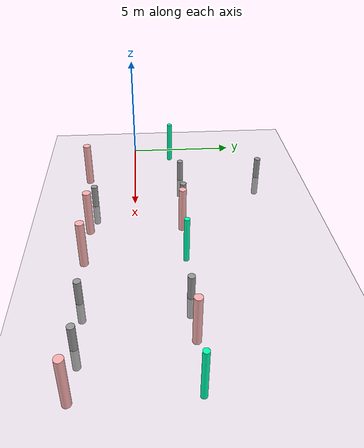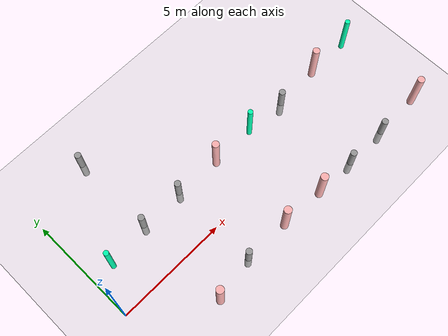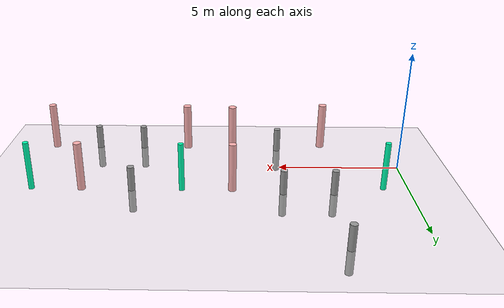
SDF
<sdf version="1.6">
 <world name="default">
  <model name="ground_plane">
   <static>1</static>
   <link name="link">
    <collision name="collision">
     <geometry><plane><normal>0 0 1</normal><size>100 100</size></plane></geometry>
     <surface><friction><ode><mu>100</mu><mu2>50</mu2></ode></friction></surface>
    </collision>
    <visual name="visual">
     <cast_shadows>0</cast_shadows>
     <geometry><plane><normal>0 0 1</normal><size>100 100</size></plane></geometry>
     <material>
      <script><uri>file://media/materials/scripts/gazebo.material</uri><name>Gazebo/Grey</name></script>
     </material>
    </visual>
   </link>
  </model>
  <model name="my_cylinder014_clone_58">
   <pose>5 -1.8 0 0 -0 0</pose>
   <link name="my_cylinder014::link">
    <inertial>
     <mass>1</mass>
     <inertia><ixx>0.145833</ixx><ixy>0</ixy><ixz>0</ixz><iyy>0.145833</iyy><iyz>0</iyz><izz>0.125</izz></inertia>
    </inertial>
    <visual name="visual">
     <geometry><cylinder><radius>0.14</radius><length>2</length></cylinder></geometry>
     <material>
      <script><name>Gazebo/Grey</name><uri>file://media/materials/scripts/gazebo.material</uri></script>
      <ambient>0.3 0.3 0.3 1</ambient>
      <diffuse>0.7 0.7 0.7 1</diffuse>
      <specular>1 0.01 0.01 1</specular>
      <emissive>0 0 0 1</emissive>
      <shader type="vertex"><normal_map>__default__</normal_map></shader>
     </material>
    </visual>
    <collision name="collision">
     <geometry><cylinder><radius>0.14</radius><length>2</length></cylinder></geometry>
     <surface>
      <friction>
       <ode><mu>1</mu><mu2>1</mu2><fdir1>0 0 0</fdir1><slip1>0</slip1><slip2>0</slip2></ode>
       <torsional>
        <coefficient>1</coefficient>
        <patch_radius>0</patch_radius>
        <surface_radius>0</surface_radius>
        <use_patch_radius>1</use_patch_radius>
        <ode><slip>0</slip></ode>
       </torsional>
      </friction>
      <bounce><restitution_coefficient>0</restitution_coefficient><threshold>1e+06</threshold></bounce>
      <contact>
       <collide_without_contact>0</collide_without_contact>
       <collide_without_contact_bitmask>1</collide_without_contact_bitmask>
       <collide_bitmask>1</collide_bitmask>
       <ode>
        <soft_cfm>0</soft_cfm>
        <soft_erp>0.2</soft_erp>
        <kp>1e+13</kp>
        <kd>1</kd>
        <max_vel>0.01</max_vel>
        <min_depth>0</min_depth>
       </ode>
       <bullet>
        <split_impulse>1</split_impulse>
        <split_impulse_penetration_threshold>-0.01</split_impulse_penetration_threshold>
        <soft_cfm>0</soft_cfm>
        <soft_erp>0.2</soft_erp>
        <kp>1e+13</kp>
        <kd>1</kd>
       </bullet>
      </contact>
     </surface>
    </collision>
   </link>
   <static>1</static>
  </model>
  <model name="my_cylinder014_clone_61">
   <pose>11 -2 0 0 -0 0</pose>
   <link name="my_cylinder014::link">
    <inertial>
     <mass>1</mass>
     <inertia><ixx>0.145833</ixx><ixy>0</ixy><ixz>0</ixz><iyy>0.145833</iyy><iyz>0</iyz><izz>0.125</izz></inertia>
    </inertial>
    <visual name="visual">
     <geometry><cylinder><radius>0.14</radius><length>2</length></cylinder></geometry>
     <material>
      <script><name>Gazebo/Grey</name><uri>file://media/materials/scripts/gazebo.material</uri></script>
      <ambient>0.3 0.3 0.3 1</ambient>
      <diffuse>0.7 0.7 0.7 1</diffuse>
      <specular>1 0.01 0.01 1</specular>
      <emissive>0 0 0 1</emissive>
      <shader type="vertex"><normal_map>__default__</normal_map></shader>
     </material>
    </visual>
    <collision name="collision">
     <geometry><cylinder><radius>0.14</radius><length>2</length></cylinder></geometry>
     <surface>
      <friction>
       <ode><mu>1</mu><mu2>1</mu2><fdir1>0 0 0</fdir1><slip1>0</slip1><slip2>0</slip2></ode>
       <torsional>
        <coefficient>1</coefficient>
        <patch_radius>0</patch_radius>
        <surface_radius>0</surface_radius>
        <use_patch_radius>1</use_patch_radius>
        <ode><slip>0</slip></ode>
       </torsional>
      </friction>
      <bounce><restitution_coefficient>0</restitution_coefficient><threshold>1e+06</threshold></bounce>
      <contact>
       <collide_without_contact>0</collide_without_contact>
       <collide_without_contact_bitmask>1</collide_without_contact_bitmask>
       <collide_bitmask>1</collide_bitmask>
       <ode>
        <soft_cfm>0</soft_cfm>
        <soft_erp>0.2</soft_erp>
        <kp>1e+13</kp>
        <kd>1</kd>
        <max_vel>0.01</max_vel>
        <min_depth>0</min_depth>
       </ode>
       <bullet>
        <split_impulse>1</split_impulse>
        <split_impulse_penetration_threshold>-0.01</split_impulse_penetration_threshold>
        <soft_cfm>0</soft_cfm>
        <soft_erp>0.2</soft_erp>
        <kp>1e+13</kp>
        <kd>1</kd>
       </bullet>
      </contact>
     </surface>
    </collision>
   </link>
   <static>1</static>
  </model>
  <model name="my_cylinder014_clone_62">
   <pose>13 -2 0 0 -0 0</pose>
   <link name="my_cylinder014::link">
    <inertial>
     <mass>1</mass>
     <inertia><ixx>0.145833</ixx><ixy>0</ixy><ixz>0</ixz><iyy>0.145833</iyy><iyz>0</iyz><izz>0.125</izz></inertia>
    </inertial>
    <visual name="visual">
     <geometry><cylinder><radius>0.14</radius><length>2</length></cylinder></geometry>
     <material>
      <script><name>Gazebo/Grey</name><uri>file://media/materials/scripts/gazebo.material</uri></script>
      <ambient>0.3 0.3 0.3 1</ambient>
      <diffuse>0.7 0.7 0.7 1</diffuse>
      <specular>1 0.01 0.01 1</specular>
      <emissive>0 0 0 1</emissive>
      <shader type="vertex"><normal_map>__default__</normal_map></shader>
     </material>
    </visual>
    <collision name="collision">
     <geometry><cylinder><radius>0.14</radius><length>2</length></cylinder></geometry>
     <surface>
      <friction>
       <ode><mu>1</mu><mu2>1</mu2><fdir1>0 0 0</fdir1><slip1>0</slip1><slip2>0</slip2></ode>
       <torsional>
        <coefficient>1</coefficient>
        <patch_radius>0</patch_radius>
        <surface_radius>0</surface_radius>
        <use_patch_radius>1</use_patch_radius>
        <ode><slip>0</slip></ode>
       </torsional>
      </friction>
      <bounce><restitution_coefficient>0</restitution_coefficient><threshold>1e+06</threshold></bounce>
      <contact>
       <collide_without_contact>0</collide_without_contact>
       <collide_without_contact_bitmask>1</collide_without_contact_bitmask>
       <collide_bitmask>1</collide_bitmask>
       <ode>
        <soft_cfm>0</soft_cfm>
        <soft_erp>0.2</soft_erp>
        <kp>1e+13</kp>
        <kd>1</kd>
        <max_vel>0.01</max_vel>
        <min_depth>0</min_depth>
       </ode>
       <bullet>
        <split_impulse>1</split_impulse>
        <split_impulse_penetration_threshold>-0.01</split_impulse_penetration_threshold>
        <soft_cfm>0</soft_cfm>
        <soft_erp>0.2</soft_erp>
        <kp>1e+13</kp>
        <kd>1</kd>
       </bullet>
      </contact>
     </surface>
    </collision>
   </link>
   <static>1</static>
  </model>
  <model name="my_cylinder014_clone_73">
   <pose>3 2.2 0 0 -0 0</pose>
   <link name="my_cylinder014::link">
    <inertial>
     <mass>1</mass>
     <inertia><ixx>0.145833</ixx><ixy>0</ixy><ixz>0</ixz><iyy>0.145833</iyy><iyz>0</iyz><izz>0.125</izz></inertia>
    </inertial>
    <visual name="visual">
     <geometry><cylinder><radius>0.14</radius><length>2</length></cylinder></geometry>
     <material>
      <script><name>Gazebo/Grey</name><uri>file://media/materials/scripts/gazebo.material</uri></script>
      <ambient>0.3 0.3 0.3 1</ambient>
      <diffuse>0.7 0.7 0.7 1</diffuse>
      <specular>1 0.01 0.01 1</specular>
      <emissive>0 0 0 1</emissive>
      <shader type="vertex"><normal_map>__default__</normal_map></shader>
     </material>
    </visual>
    <collision name="collision">
     <geometry><cylinder><radius>0.14</radius><length>2</length></cylinder></geometry>
     <surface>
      <friction>
       <ode><mu>1</mu><mu2>1</mu2><fdir1>0 0 0</fdir1><slip1>0</slip1><slip2>0</slip2></ode>
       <torsional>
        <coefficient>1</coefficient>
        <patch_radius>0</patch_radius>
        <surface_radius>0</surface_radius>
        <use_patch_radius>1</use_patch_radius>
        <ode><slip>0</slip></ode>
       </torsional>
      </friction>
      <bounce><restitution_coefficient>0</restitution_coefficient><threshold>1e+06</threshold></bounce>
      <contact>
       <collide_without_contact>0</collide_without_contact>
       <collide_without_contact_bitmask>1</collide_without_contact_bitmask>
       <collide_bitmask>1</collide_bitmask>
       <ode>
        <soft_cfm>0</soft_cfm>
        <soft_erp>0.2</soft_erp>
        <kp>1e+13</kp>
        <kd>1</kd>
        <max_vel>0.01</max_vel>
        <min_depth>0</min_depth>
       </ode>
       <bullet>
        <split_impulse>1</split_impulse>
        <split_impulse_penetration_threshold>-0.01</split_impulse_penetration_threshold>
        <soft_cfm>0</soft_cfm>
        <soft_erp>0.2</soft_erp>
        <kp>1e+13</kp>
        <kd>1</kd>
       </bullet>
      </contact>
     </surface>
    </collision>
   </link>
   <static>1</static>
  </model>
  <model name="my_cylinder014_clone_74">
   <pose>5 2.2 0 0 -0 0</pose>
   <link name="my_cylinder014::link">
    <inertial>
     <mass>1</mass>
     <inertia><ixx>0.145833</ixx><ixy>0</ixy><ixz>0</ixz><iyy>0.145833</iyy><iyz>0</iyz><izz>0.125</izz></inertia>
    </inertial>
    <visual name="visual">
     <geometry><cylinder><radius>0.14</radius><length>2</length></cylinder></geometry>
     <material>
      <script><name>Gazebo/Grey</name><uri>file://media/materials/scripts/gazebo.material</uri></script>
      <ambient>0.3 0.3 0.3 1</ambient>
      <diffuse>0.7 0.7 0.7 1</diffuse>
      <specular>1 0.01 0.01 1</specular>
      <emissive>0 0 0 1</emissive>
      <shader type="vertex"><normal_map>__default__</normal_map></shader>
     </material>
    </visual>
    <collision name="collision">
     <geometry><cylinder><radius>0.14</radius><length>2</length></cylinder></geometry>
     <surface>
      <friction>
       <ode><mu>1</mu><mu2>1</mu2><fdir1>0 0 0</fdir1><slip1>0</slip1><slip2>0</slip2></ode>
       <torsional>
        <coefficient>1</coefficient>
        <patch_radius>0</patch_radius>
        <surface_radius>0</surface_radius>
        <use_patch_radius>1</use_patch_radius>
        <ode><slip>0</slip></ode>
       </torsional>
      </friction>
      <bounce><restitution_coefficient>0</restitution_coefficient><threshold>1e+06</threshold></bounce>
      <contact>
       <collide_without_contact>0</collide_without_contact>
       <collide_without_contact_bitmask>1</collide_without_contact_bitmask>
       <collide_bitmask>1</collide_bitmask>
       <ode>
        <soft_cfm>0</soft_cfm>
        <soft_erp>0.2</soft_erp>
        <kp>1e+13</kp>
        <kd>1</kd>
        <max_vel>0.01</max_vel>
        <min_depth>0</min_depth>
       </ode>
       <bullet>
        <split_impulse>1</split_impulse>
        <split_impulse_penetration_threshold>-0.01</split_impulse_penetration_threshold>
        <soft_cfm>0</soft_cfm>
        <soft_erp>0.2</soft_erp>
        <kp>1e+13</kp>
        <kd>1</kd>
       </bullet>
      </contact>
     </surface>
    </collision>
   </link>
   <static>1</static>
  </model>
  <model name="my_cylinder014_clone_77">
   <pose>11 2 0 0 -0 0</pose>
   <link name="my_cylinder014::link">
    <inertial>
     <mass>1</mass>
     <inertia><ixx>0.145833</ixx><ixy>0</ixy><ixz>0</ixz><iyy>0.145833</iyy><iyz>0</iyz><izz>0.125</izz></inertia>
    </inertial>
    <visual name="visual">
     <geometry><cylinder><radius>0.14</radius><length>2</length></cylinder></geometry>
     <material>
      <script><name>Gazebo/Grey</name><uri>file://media/materials/scripts/gazebo.material</uri></script>
      <ambient>0.3 0.3 0.3 1</ambient>
      <diffuse>0.7 0.7 0.7 1</diffuse>
      <specular>1 0.01 0.01 1</specular>
      <emissive>0 0 0 1</emissive>
      <shader type="vertex"><normal_map>__default__</normal_map></shader>
     </material>
    </visual>
    <collision name="collision">
     <geometry><cylinder><radius>0.14</radius><length>2</length></cylinder></geometry>
     <surface>
      <friction>
       <ode><mu>1</mu><mu2>1</mu2><fdir1>0 0 0</fdir1><slip1>0</slip1><slip2>0</slip2></ode>
       <torsional>
        <coefficient>1</coefficient>
        <patch_radius>0</patch_radius>
        <surface_radius>0</surface_radius>
        <use_patch_radius>1</use_patch_radius>
        <ode><slip>0</slip></ode>
       </torsional>
      </friction>
      <bounce><restitution_coefficient>0</restitution_coefficient><threshold>1e+06</threshold></bounce>
      <contact>
       <collide_without_contact>0</collide_without_contact>
       <collide_without_contact_bitmask>1</collide_without_contact_bitmask>
       <collide_bitmask>1</collide_bitmask>
       <ode>
        <soft_cfm>0</soft_cfm>
        <soft_erp>0.2</soft_erp>
        <kp>1e+13</kp>
        <kd>1</kd>
        <max_vel>0.01</max_vel>
        <min_depth>0</min_depth>
       </ode>
       <bullet>
        <split_impulse>1</split_impulse>
        <split_impulse_penetration_threshold>-0.01</split_impulse_penetration_threshold>
        <soft_cfm>0</soft_cfm>
        <soft_erp>0.2</soft_erp>
        <kp>1e+13</kp>
        <kd>1</kd>
       </bullet>
      </contact>
     </surface>
    </collision>
   </link>
   <static>1</static>
  </model>
  <model name="my_cylinder014_clone_89">
   <pose>3 6 0 0 -0 0</pose>
   <link name="my_cylinder014::link">
    <inertial>
     <mass>1</mass>
     <inertia><ixx>0.145833</ixx><ixy>0</ixy><ixz>0</ixz><iyy>0.145833</iyy><iyz>0</iyz><izz>0.125</izz></inertia>
    </inertial>
    <visual name="visual">
     <geometry><cylinder><radius>0.14</radius><length>2</length></cylinder></geometry>
     <material>
      <script><name>Gazebo/Grey</name><uri>file://media/materials/scripts/gazebo.material</uri></script>
      <ambient>0.3 0.3 0.3 1</ambient>
      <diffuse>0.7 0.7 0.7 1</diffuse>
      <specular>1 0.01 0.01 1</specular>
      <emissive>0 0 0 1</emissive>
      <shader type="vertex"><normal_map>__default__</normal_map></shader>
     </material>
    </visual>
    <collision name="collision">
     <geometry><cylinder><radius>0.14</radius><length>2</length></cylinder></geometry>
     <surface>
      <friction>
       <ode><mu>1</mu><mu2>1</mu2><fdir1>0 0 0</fdir1><slip1>0</slip1><slip2>0</slip2></ode>
       <torsional>
        <coefficient>1</coefficient>
        <patch_radius>0</patch_radius>
        <surface_radius>0</surface_radius>
        <use_patch_radius>1</use_patch_radius>
        <ode><slip>0</slip></ode>
       </torsional>
      </friction>
      <bounce><restitution_coefficient>0</restitution_coefficient><threshold>1e+06</threshold></bounce>
      <contact>
       <collide_without_contact>0</collide_without_contact>
       <collide_without_contact_bitmask>1</collide_without_contact_bitmask>
       <collide_bitmask>1</collide_bitmask>
       <ode>
        <soft_cfm>0</soft_cfm>
        <soft_erp>0.2</soft_erp>
        <kp>1e+13</kp>
        <kd>1</kd>
        <max_vel>0.01</max_vel>
        <min_depth>0</min_depth>
       </ode>
       <bullet>
        <split_impulse>1</split_impulse>
        <split_impulse_penetration_threshold>-0.01</split_impulse_penetration_threshold>
        <soft_cfm>0</soft_cfm>
        <soft_erp>0.2</soft_erp>
        <kp>1e+13</kp>
        <kd>1</kd>
       </bullet>
      </contact>
     </surface>
    </collision>
   </link>
   <static>1</static>
  </model>
  <model name="my_cylinder0168">
   <link name="link">
    <inertial>
     <mass>1</mass>
     <inertia><ixx>0.145833</ixx><ixy>0</ixy><ixz>0</ixz><iyy>0.145833</iyy><iyz>0</iyz><izz>0.125</izz></inertia>
    </inertial>
    <visual name="visual">
     <geometry><cylinder><radius>0.168</radius><length>2</length></cylinder></geometry>
     <material>
      <script><name>Gazebo/Grey</name><uri>file://media/materials/scripts/gazebo.material</uri></script>
      <ambient>1 0.3 0.3 1</ambient>
      <diffuse>1 0.7 0.7 1</diffuse>
      <specular>1 0.01 0.01 1</specular>
      <emissive>1 0 0 1</emissive>
      <shader type="vertex"><normal_map>__default__</normal_map></shader>
     </material>
    </visual>
    <collision name="collision">
     <geometry><cylinder><radius>0.168</radius><length>2</length></cylinder></geometry>
     <surface>
      <friction>
       <ode><mu>1</mu><mu2>1</mu2><fdir1>0 0 0</fdir1><slip1>0</slip1><slip2>0</slip2></ode>
       <torsional>
        <coefficient>1</coefficient>
        <patch_radius>0</patch_radius>
        <surface_radius>0</surface_radius>
        <use_patch_radius>1</use_patch_radius>
        <ode><slip>0</slip></ode>
       </torsional>
      </friction>
      <bounce><restitution_coefficient>0</restitution_coefficient><threshold>1e+06</threshold></bounce>
      <contact>
       <collide_without_contact>0</collide_without_contact>
       <collide_without_contact_bitmask>1</collide_without_contact_bitmask>
       <collide_bitmask>1</collide_bitmask>
       <ode>
        <soft_cfm>0</soft_cfm>
        <soft_erp>0.2</soft_erp>
        <kp>1e+13</kp>
        <kd>1</kd>
        <max_vel>0.01</max_vel>
        <min_depth>0</min_depth>
       </ode>
       <bullet>
        <split_impulse>1</split_impulse>
        <split_impulse_penetration_threshold>-0.01</split_impulse_penetration_threshold>
        <soft_cfm>0</soft_cfm>
        <soft_erp>0.2</soft_erp>
        <kp>1e+13</kp>
        <kd>1</kd>
       </bullet>
      </contact>
     </surface>
    </collision>
   </link>
   <static>0</static>
   <pose>3 -2.2 0.999995 0 -0 0.000271</pose>
  </model>
  <model name="my_cylinder0168_0">
   <link name="link">
    <inertial>
     <mass>1</mass>
     <inertia><ixx>0.145833</ixx><ixy>0</ixy><ixz>0</ixz><iyy>0.145833</iyy><iyz>0</iyz><izz>0.125</izz></inertia>
    </inertial>
    <visual name="visual">
     <geometry><cylinder><radius>0.168</radius><length>2</length></cylinder></geometry>
     <material>
      <script><name>Gazebo/Grey</name><uri>file://media/materials/scripts/gazebo.material</uri></script>
      <ambient>1 0.3 0.3 1</ambient>
      <diffuse>1 0.7 0.7 1</diffuse>
      <specular>1 0.01 0.01 1</specular>
      <emissive>1 0 0 1</emissive>
      <shader type="vertex"><normal_map>__default__</normal_map></shader>
     </material>
    </visual>
    <collision name="collision">
     <geometry><cylinder><radius>0.168</radius><length>2</length></cylinder></geometry>
     <surface>
      <friction>
       <ode><mu>1</mu><mu2>1</mu2><fdir1>0 0 0</fdir1><slip1>0</slip1><slip2>0</slip2></ode>
       <torsional>
        <coefficient>1</coefficient>
        <patch_radius>0</patch_radius>
        <surface_radius>0</surface_radius>
        <use_patch_radius>1</use_patch_radius>
        <ode><slip>0</slip></ode>
       </torsional>
      </friction>
      <bounce><restitution_coefficient>0</restitution_coefficient><threshold>1e+06</threshold></bounce>
      <contact>
       <collide_without_contact>0</collide_without_contact>
       <collide_without_contact_bitmask>1</collide_without_contact_bitmask>
       <collide_bitmask>1</collide_bitmask>
       <ode>
        <soft_cfm>0</soft_cfm>
        <soft_erp>0.2</soft_erp>
        <kp>1e+13</kp>
        <kd>1</kd>
        <max_vel>0.01</max_vel>
        <min_depth>0</min_depth>
       </ode>
       <bullet>
        <split_impulse>1</split_impulse>
        <split_impulse_penetration_threshold>-0.01</split_impulse_penetration_threshold>
        <soft_cfm>0</soft_cfm>
        <soft_erp>0.2</soft_erp>
        <kp>1e+13</kp>
        <kd>1</kd>
       </bullet>
      </contact>
     </surface>
    </collision>
   </link>
   <static>0</static>
   <pose>7 -1.9 0.999995 0 -0 0.000274</pose>
  </model>
  <model name="my_cylinder0168_1">
   <link name="link">
    <inertial>
     <mass>1</mass>
     <inertia><ixx>0.145833</ixx><ixy>0</ixy><ixz>0</ixz><iyy>0.145833</iyy><iyz>0</iyz><izz>0.125</izz></inertia>
    </inertial>
    <visual name="visual">
     <geometry><cylinder><radius>0.168</radius><length>2</length></cylinder></geometry>
     <material>
      <script><name>Gazebo/Grey</name><uri>file://media/materials/scripts/gazebo.material</uri></script>
      <ambient>1 0.3 0.3 1</ambient>
      <diffuse>1 0.7 0.7 1</diffuse>
      <specular>1 0.01 0.01 1</specular>
      <emissive>1 0 0 1</emissive>
      <shader type="vertex"><normal_map>__default__</normal_map></shader>
     </material>
    </visual>
    <collision name="collision">
     <geometry><cylinder><radius>0.168</radius><length>2</length></cylinder></geometry>
     <surface>
      <friction>
       <ode><mu>1</mu><mu2>1</mu2><fdir1>0 0 0</fdir1><slip1>0</slip1><slip2>0</slip2></ode>
       <torsional>
        <coefficient>1</coefficient>
        <patch_radius>0</patch_radius>
        <surface_radius>0</surface_radius>
        <use_patch_radius>1</use_patch_radius>
        <ode><slip>0</slip></ode>
       </torsional>
      </friction>
      <bounce><restitution_coefficient>0</restitution_coefficient><threshold>1e+06</threshold></bounce>
      <contact>
       <collide_without_contact>0</collide_without_contact>
       <collide_without_contact_bitmask>1</collide_without_contact_bitmask>
       <collide_bitmask>1</collide_bitmask>
       <ode>
        <soft_cfm>0</soft_cfm>
        <soft_erp>0.2</soft_erp>
        <kp>1e+13</kp>
        <kd>1</kd>
        <max_vel>0.01</max_vel>
        <min_depth>0</min_depth>
       </ode>
       <bullet>
        <split_impulse>1</split_impulse>
        <split_impulse_penetration_threshold>-0.01</split_impulse_penetration_threshold>
        <soft_cfm>0</soft_cfm>
        <soft_erp>0.2</soft_erp>
        <kp>1e+13</kp>
        <kd>1</kd>
       </bullet>
      </contact>
     </surface>
    </collision>
   </link>
   <static>0</static>
   <pose>9.00001 -1.99999 0.999995 0 -0 0.000305</pose>
  </model>
  <model name="my_cylinder0112_0">
   <link name="link">
    <inertial>
     <mass>1</mass>
     <inertia><ixx>0.145833</ixx><ixy>0</ixy><ixz>0</ixz><iyy>0.145833</iyy><iyz>0</iyz><izz>0.125</izz></inertia>
    </inertial>
    <visual name="visual">
     <geometry><cylinder><radius>0.112</radius><length>2</length></cylinder></geometry>
     <material>
      <script><name>Gazebo/Grey</name><uri>file://media/materials/scripts/gazebo.material</uri></script>
      <ambient>0 1 0.3 1</ambient>
      <diffuse>0 1 0.7 1</diffuse>
      <specular>1 1 0.01 1</specular>
      <emissive>0 0 0 1</emissive>
      <shader type="vertex"><normal_map>__default__</normal_map></shader>
     </material>
    </visual>
    <collision name="collision">
     <geometry><cylinder><radius>0.112</radius><length>2</length></cylinder></geometry>
     <surface>
      <friction>
       <ode><mu>1</mu><mu2>1</mu2><fdir1>0 0 0</fdir1><slip1>0</slip1><slip2>0</slip2></ode>
       <torsional>
        <coefficient>1</coefficient>
        <patch_radius>0</patch_radius>
        <surface_radius>0</surface_radius>
        <use_patch_radius>1</use_patch_radius>
        <ode><slip>0</slip></ode>
       </torsional>
      </friction>
      <bounce><restitution_coefficient>0</restitution_coefficient><threshold>1e+06</threshold></bounce>
      <contact>
       <collide_without_contact>0</collide_without_contact>
       <collide_without_contact_bitmask>1</collide_without_contact_bitmask>
       <collide_bitmask>1</collide_bitmask>
       <ode>
        <soft_cfm>0</soft_cfm>
        <soft_erp>0.2</soft_erp>
        <kp>1e+13</kp>
        <kd>1</kd>
        <max_vel>0.01</max_vel>
        <min_depth>0</min_depth>
       </ode>
       <bullet>
        <split_impulse>1</split_impulse>
        <split_impulse_penetration_threshold>-0.01</split_impulse_penetration_threshold>
        <soft_cfm>0</soft_cfm>
        <soft_erp>0.2</soft_erp>
        <kp>1e+13</kp>
        <kd>1</kd>
       </bullet>
      </contact>
     </surface>
    </collision>
   </link>
   <static>0</static>
   <pose>1.00009 1.80002 0.999993 0 0 -0.002872</pose>
  </model>
  <model name="my_cylinder0154">
   <link name="link">
    <inertial>
     <mass>1</mass>
     <inertia><ixx>0.145833</ixx><ixy>0</ixy><ixz>0</ixz><iyy>0.145833</iyy><iyz>0</iyz><izz>0.125</izz></inertia>
    </inertial>
    <visual name="visual">
     <geometry><cylinder><radius>0.154</radius><length>2</length></cylinder></geometry>
     <material>
      <script><name>Gazebo/Grey</name><uri>file://media/materials/scripts/gazebo.material</uri></script>
      <ambient>0.8 0.3 0.3 1</ambient>
      <diffuse>1 0.7 0.7 1</diffuse>
      <specular>1 0.01 0.01 1</specular>
      <emissive>0 0 0 1</emissive>
      <shader type="vertex"><normal_map>__default__</normal_map></shader>
     </material>
    </visual>
    <collision name="collision">
     <geometry><cylinder><radius>0.154</radius><length>2</length></cylinder></geometry>
     <surface>
      <friction>
       <ode><mu>1</mu><mu2>1</mu2><fdir1>0 0 0</fdir1><slip1>0</slip1><slip2>0</slip2></ode>
       <torsional>
        <coefficient>1</coefficient>
        <patch_radius>0</patch_radius>
        <surface_radius>0</surface_radius>
        <use_patch_radius>1</use_patch_radius>
        <ode><slip>0</slip></ode>
       </torsional>
      </friction>
      <bounce><restitution_coefficient>0</restitution_coefficient><threshold>1e+06</threshold></bounce>
      <contact>
       <collide_without_contact>0</collide_without_contact>
       <collide_without_contact_bitmask>1</collide_without_contact_bitmask>
       <collide_bitmask>1</collide_bitmask>
       <ode>
        <soft_cfm>0</soft_cfm>
        <soft_erp>0.2</soft_erp>
        <kp>1e+13</kp>
        <kd>1</kd>
        <max_vel>0.01</max_vel>
        <min_depth>0</min_depth>
       </ode>
       <bullet>
        <split_impulse>1</split_impulse>
        <split_impulse_penetration_threshold>-0.01</split_impulse_penetration_threshold>
        <soft_cfm>0</soft_cfm>
        <soft_erp>0.2</soft_erp>
        <kp>1e+13</kp>
        <kd>1</kd>
       </bullet>
      </contact>
     </surface>
    </collision>
   </link>
   <static>0</static>
   <pose>7 2 0.999995 0 0 -9e-05</pose>
  </model>
  <model name="my_cylinder0112_1">
   <link name="link">
    <inertial>
     <mass>1</mass>
     <inertia><ixx>0.145833</ixx><ixy>0</ixy><ixz>0</ixz><iyy>0.145833</iyy><iyz>0</iyz><izz>0.125</izz></inertia>
    </inertial>
    <visual name="visual">
     <geometry><cylinder><radius>0.112</radius><length>2</length></cylinder></geometry>
     <material>
      <script><name>Gazebo/Grey</name><uri>file://media/materials/scripts/gazebo.material</uri></script>
      <ambient>0 1 0.3 1</ambient>
      <diffuse>0 1 0.7 1</diffuse>
      <specular>1 1 0.01 1</specular>
      <emissive>0 0 0 1</emissive>
      <shader type="vertex"><normal_map>__default__</normal_map></shader>
     </material>
    </visual>
    <collision name="collision">
     <geometry><cylinder><radius>0.112</radius><length>2</length></cylinder></geometry>
     <surface>
      <friction>
       <ode><mu>1</mu><mu2>1</mu2><fdir1>0 0 0</fdir1><slip1>0</slip1><slip2>0</slip2></ode>
       <torsional>
        <coefficient>1</coefficient>
        <patch_radius>0</patch_radius>
        <surface_radius>0</surface_radius>
        <use_patch_radius>1</use_patch_radius>
        <ode><slip>0</slip></ode>
       </torsional>
      </friction>
      <bounce><restitution_coefficient>0</restitution_coefficient><threshold>1e+06</threshold></bounce>
      <contact>
       <collide_without_contact>0</collide_without_contact>
       <collide_without_contact_bitmask>1</collide_without_contact_bitmask>
       <collide_bitmask>1</collide_bitmask>
       <ode>
        <soft_cfm>0</soft_cfm>
        <soft_erp>0.2</soft_erp>
        <kp>1e+13</kp>
        <kd>1</kd>
        <max_vel>0.01</max_vel>
        <min_depth>0</min_depth>
       </ode>
       <bullet>
        <split_impulse>1</split_impulse>
        <split_impulse_penetration_threshold>-0.01</split_impulse_penetration_threshold>
        <soft_cfm>0</soft_cfm>
        <soft_erp>0.2</soft_erp>
        <kp>1e+13</kp>
        <kd>1</kd>
       </bullet>
      </contact>
     </surface>
    </collision>
   </link>
   <static>0</static>
   <pose>9.00009 2.00009 0.999993 0 0 -0.002699</pose>
  </model>
  <model name="my_cylinder0112_2">
   <link name="link">
    <inertial>
     <mass>1</mass>
     <inertia><ixx>0.145833</ixx><ixy>0</ixy><ixz>0</ixz><iyy>0.145833</iyy><iyz>0</iyz><izz>0.125</izz></inertia>
    </inertial>
    <visual name="visual">
     <geometry><cylinder><radius>0.112</radius><length>2</length></cylinder></geometry>
     <material>
      <script><name>Gazebo/Grey</name><uri>file://media/materials/scripts/gazebo.material</uri></script>
      <ambient>0 1 0.3 1</ambient>
      <diffuse>0 1 0.7 1</diffuse>
      <specular>1 1 0.01 1</specular>
      <emissive>0 0 0 1</emissive>
      <shader type="vertex"><normal_map>__default__</normal_map></shader>
     </material>
    </visual>
    <collision name="collision">
     <geometry><cylinder><radius>0.112</radius><length>2</length></cylinder></geometry>
     <surface>
      <friction>
       <ode><mu>1</mu><mu2>1</mu2><fdir1>0 0 0</fdir1><slip1>0</slip1><slip2>0</slip2></ode>
       <torsional>
        <coefficient>1</coefficient>
        <patch_radius>0</patch_radius>
        <surface_radius>0</surface_radius>
        <use_patch_radius>1</use_patch_radius>
        <ode><slip>0</slip></ode>
       </torsional>
      </friction>
      <bounce><restitution_coefficient>0</restitution_coefficient><threshold>1e+06</threshold></bounce>
      <contact>
       <collide_without_contact>0</collide_without_contact>
       <collide_without_contact_bitmask>1</collide_without_contact_bitmask>
       <collide_bitmask>1</collide_bitmask>
       <ode>
        <soft_cfm>0</soft_cfm>
        <soft_erp>0.2</soft_erp>
        <kp>1e+13</kp>
        <kd>1</kd>
        <max_vel>0.01</max_vel>
        <min_depth>0</min_depth>
       </ode>
       <bullet>
        <split_impulse>1</split_impulse>
        <split_impulse_penetration_threshold>-0.01</split_impulse_penetration_threshold>
        <soft_cfm>0</soft_cfm>
        <soft_erp>0.2</soft_erp>
        <kp>1e+13</kp>
        <kd>1</kd>
       </bullet>
      </contact>
     </surface>
    </collision>
   </link>
   <static>0</static>
   <pose>15 2.00003 0.999997 0 0 -0.002463</pose>
  </model>
  <model name="my_cylinder0154_0">
   <link name="link">
    <inertial>
     <mass>1</mass>
     <inertia><ixx>0.145833</ixx><ixy>0</ixy><ixz>0</ixz><iyy>0.145833</iyy><iyz>0</iyz><izz>0.125</izz></inertia>
    </inertial>
    <visual name="visual">
     <geometry><cylinder><radius>0.154</radius><length>2</length></cylinder></geometry>
     <material>
      <script><name>Gazebo/Grey</name><uri>file://media/materials/scripts/gazebo.material</uri></script>
      <ambient>0.8 0.3 0.3 1</ambient>
      <diffuse>1 0.7 0.7 1</diffuse>
      <specular>1 0.01 0.01 1</specular>
      <emissive>0 0 0 1</emissive>
      <shader type="vertex"><normal_map>__default__</normal_map></shader>
     </material>
    </visual>
    <collision name="collision">
     <geometry><cylinder><radius>0.154</radius><length>2</length></cylinder></geometry>
     <surface>
      <friction>
       <ode><mu>1</mu><mu2>1</mu2><fdir1>0 0 0</fdir1><slip1>0</slip1><slip2>0</slip2></ode>
       <torsional>
        <coefficient>1</coefficient>
        <patch_radius>0</patch_radius>
        <surface_radius>0</surface_radius>
        <use_patch_radius>1</use_patch_radius>
        <ode><slip>0</slip></ode>
       </torsional>
      </friction>
      <bounce><restitution_coefficient>0</restitution_coefficient><threshold>1e+06</threshold></bounce>
      <contact>
       <collide_without_contact>0</collide_without_contact>
       <collide_without_contact_bitmask>1</collide_without_contact_bitmask>
       <collide_bitmask>1</collide_bitmask>
       <ode>
        <soft_cfm>0</soft_cfm>
        <soft_erp>0.2</soft_erp>
        <kp>1e+13</kp>
        <kd>1</kd>
        <max_vel>0.01</max_vel>
        <min_depth>0</min_depth>
       </ode>
       <bullet>
        <split_impulse>1</split_impulse>
        <split_impulse_penetration_threshold>-0.01</split_impulse_penetration_threshold>
        <soft_cfm>0</soft_cfm>
        <soft_erp>0.2</soft_erp>
        <kp>1e+13</kp>
        <kd>1</kd>
       </bullet>
      </contact>
     </surface>
    </collision>
   </link>
   <static>0</static>
   <pose>13 2 0.999995 0 0 -0.000113</pose>
  </model>
  <model name="my_cylinder0154_2">
   <link name="link">
    <inertial>
     <mass>1</mass>
     <inertia><ixx>0.145833</ixx><ixy>0</ixy><ixz>0</ixz><iyy>0.145833</iyy><iyz>0</iyz><izz>0.125</izz></inertia>
    </inertial>
    <visual name="visual">
     <geometry><cylinder><radius>0.154</radius><length>2</length></cylinder></geometry>
     <material>
      <script><name>Gazebo/Grey</name><uri>file://media/materials/scripts/gazebo.material</uri></script>
      <ambient>0.8 0.3 0.3 1</ambient>
      <diffuse>1 0.7 0.7 1</diffuse>
      <specular>1 0.01 0.01 1</specular>
      <emissive>0 0 0 1</emissive>
      <shader type="vertex"><normal_map>__default__</normal_map></shader>
     </material>
    </visual>
    <collision name="collision">
     <geometry><cylinder><radius>0.154</radius><length>2</length></cylinder></geometry>
     <surface>
      <friction>
       <ode><mu>1</mu><mu2>1</mu2><fdir1>0 0 0</fdir1><slip1>0</slip1><slip2>0</slip2></ode>
       <torsional>
        <coefficient>1</coefficient>
        <patch_radius>0</patch_radius>
        <surface_radius>0</surface_radius>
        <use_patch_radius>1</use_patch_radius>
        <ode><slip>0</slip></ode>
       </torsional>
      </friction>
      <bounce><restitution_coefficient>0</restitution_coefficient><threshold>1e+06</threshold></bounce>
      <contact>
       <collide_without_contact>0</collide_without_contact>
       <collide_without_contact_bitmask>1</collide_without_contact_bitmask>
       <collide_bitmask>1</collide_bitmask>
       <ode>
        <soft_cfm>0</soft_cfm>
        <soft_erp>0.2</soft_erp>
        <kp>1e+13</kp>
        <kd>1</kd>
        <max_vel>0.01</max_vel>
        <min_depth>0</min_depth>
       </ode>
       <bullet>
        <split_impulse>1</split_impulse>
        <split_impulse_penetration_threshold>-0.01</split_impulse_penetration_threshold>
        <soft_cfm>0</soft_cfm>
        <soft_erp>0.2</soft_erp>
        <kp>1e+13</kp>
        <kd>1</kd>
       </bullet>
      </contact>
     </surface>
    </collision>
   </link>
   <static>0</static>
   <pose>15 -2 0.999995 0 0 -3.8e-05</pose>
  </model>
 </world>
</sdf>
